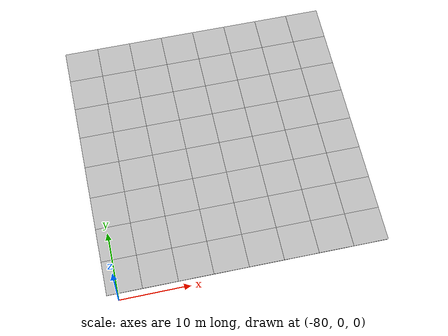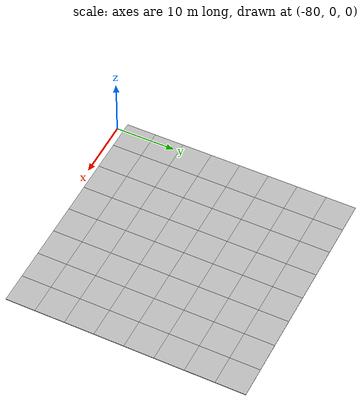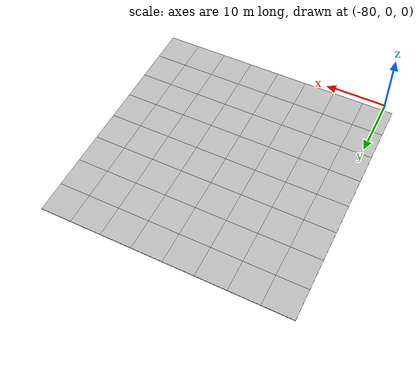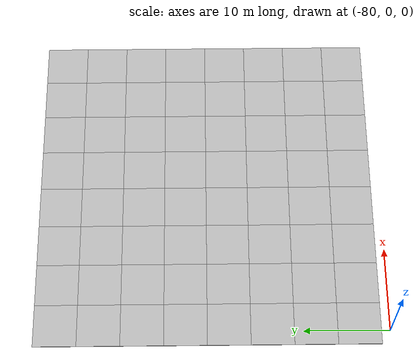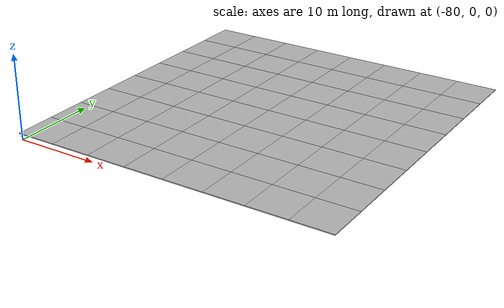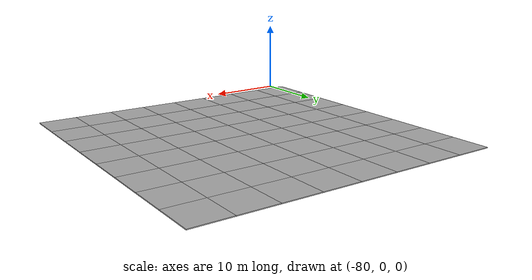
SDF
<sdf version="1.7">
 <world name="default">
  <model name="mud_plane_80x80_1">
   <model name="mud_plane_40x40_2">
    <model name="mud_plane_20x20">
     <model name="mud_plane">
      <static>1</static>
      <link name="link">
       <collision name="collision"><geometry><box><size>10 10 0.1</size></box></geometry></collision>
       <visual name="visual_1">
        <pose>-2.5 2.5 -0.05 0 -0 0</pose>
        <cast_shadows>0</cast_shadows>
        <geometry><box><size>5 5 0.1</size></box></geometry>
        <material>
         <script>
          <uri>model://mud_plane/materials/scripts</uri>
          <uri>model://mud_plane/materials/textures</uri>
          <name>vrc/mud</name>
         </script>
        </material>
       </visual>
       <visual name="visual_2">
        <pose>2.5 2.5 -0.05 0 -0 0</pose>
        <cast_shadows>0</cast_shadows>
        <geometry><box><size>5 5 0.1</size></box></geometry>
        <material>
         <script>
          <uri>model://mud_plane/materials/scripts</uri>
          <uri>model://mud_plane/materials/textures</uri>
          <name>vrc/mud</name>
         </script>
        </material>
       </visual>
       <visual name="visual_3">
        <pose>2.5 -2.5 -0.05 0 -0 0</pose>
        <cast_shadows>0</cast_shadows>
        <geometry><box><size>5 5 0.1</size></box></geometry>
        <material>
         <script>
          <uri>model://mud_plane/materials/scripts</uri>
          <uri>model://mud_plane/materials/textures</uri>
          <name>vrc/mud</name>
         </script>
        </material>
       </visual>
       <visual name="visual_4">
        <pose>-2.5 -2.5 -0.05 0 -0 0</pose>
        <cast_shadows>0</cast_shadows>
        <geometry><box><size>5 5 0.1</size></box></geometry>
        <material>
         <script>
          <uri>model://mud_plane/materials/scripts</uri>
          <uri>model://mud_plane/materials/textures</uri>
          <name>vrc/mud</name>
         </script>
        </material>
       </visual>
      </link>
      <pose>-4.99986 -4.99991 0 0 -0 0</pose>
     </model>
     <model name="mud_plane_0">
      <static>1</static>
      <link name="link">
       <collision name="collision"><geometry><box><size>10 10 0.1</size></box></geometry></collision>
       <visual name="visual_1">
        <pose>-2.5 2.5 -0.05 0 -0 0</pose>
        <cast_shadows>0</cast_shadows>
        <geometry><box><size>5 5 0.1</size></box></geometry>
        <material>
         <script>
          <uri>model://mud_plane/materials/scripts</uri>
          <uri>model://mud_plane/materials/textures</uri>
          <name>vrc/mud</name>
         </script>
        </material>
       </visual>
       <visual name="visual_2">
        <pose>2.5 2.5 -0.05 0 -0 0</pose>
        <cast_shadows>0</cast_shadows>
        <geometry><box><size>5 5 0.1</size></box></geometry>
        <material>
         <script>
          <uri>model://mud_plane/materials/scripts</uri>
          <uri>model://mud_plane/materials/textures</uri>
          <name>vrc/mud</name>
         </script>
        </material>
       </visual>
       <visual name="visual_3">
        <pose>2.5 -2.5 -0.05 0 -0 0</pose>
        <cast_shadows>0</cast_shadows>
        <geometry><box><size>5 5 0.1</size></box></geometry>
        <material>
         <script>
          <uri>model://mud_plane/materials/scripts</uri>
          <uri>model://mud_plane/materials/textures</uri>
          <name>vrc/mud</name>
         </script>
        </material>
       </visual>
       <visual name="visual_4">
        <pose>-2.5 -2.5 -0.05 0 -0 0</pose>
        <cast_shadows>0</cast_shadows>
        <geometry><box><size>5 5 0.1</size></box></geometry>
        <material>
         <script>
          <uri>model://mud_plane/materials/scripts</uri>
          <uri>model://mud_plane/materials/textures</uri>
          <name>vrc/mud</name>
         </script>
        </material>
       </visual>
      </link>
      <pose>-4.99946 4.99954 0 0 -0 0</pose>
     </model>
     <model name="mud_plane_1">
      <static>1</static>
      <link name="link">
       <collision name="collision"><geometry><box><size>10 10 0.1</size></box></geometry></collision>
       <visual name="visual_1">
        <pose>-2.5 2.5 -0.05 0 -0 0</pose>
        <cast_shadows>0</cast_shadows>
        <geometry><box><size>5 5 0.1</size></box></geometry>
        <material>
         <script>
          <uri>model://mud_plane/materials/scripts</uri>
          <uri>model://mud_plane/materials/textures</uri>
          <name>vrc/mud</name>
         </script>
        </material>
       </visual>
       <visual name="visual_2">
        <pose>2.5 2.5 -0.05 0 -0 0</pose>
        <cast_shadows>0</cast_shadows>
        <geometry><box><size>5 5 0.1</size></box></geometry>
        <material>
         <script>
          <uri>model://mud_plane/materials/scripts</uri>
          <uri>model://mud_plane/materials/textures</uri>
          <name>vrc/mud</name>
         </script>
        </material>
       </visual>
       <visual name="visual_3">
        <pose>2.5 -2.5 -0.05 0 -0 0</pose>
        <cast_shadows>0</cast_shadows>
        <geometry><box><size>5 5 0.1</size></box></geometry>
        <material>
         <script>
          <uri>model://mud_plane/materials/scripts</uri>
          <uri>model://mud_plane/materials/textures</uri>
          <name>vrc/mud</name>
         </script>
        </material>
       </visual>
       <visual name="visual_4">
        <pose>-2.5 -2.5 -0.05 0 -0 0</pose>
        <cast_shadows>0</cast_shadows>
        <geometry><box><size>5 5 0.1</size></box></geometry>
        <material>
         <script>
          <uri>model://mud_plane/materials/scripts</uri>
          <uri>model://mud_plane/materials/textures</uri>
          <name>vrc/mud</name>
         </script>
        </material>
       </visual>
      </link>
      <pose>4.99964 -4.99949 0 0 -0 0</pose>
     </model>
     <model name="mud_plane_2">
      <static>1</static>
      <link name="link">
       <collision name="collision"><geometry><box><size>10 10 0.1</size></box></geometry></collision>
       <visual name="visual_1">
        <pose>-2.5 2.5 -0.05 0 -0 0</pose>
        <cast_shadows>0</cast_shadows>
        <geometry><box><size>5 5 0.1</size></box></geometry>
        <material>
         <script>
          <uri>model://mud_plane/materials/scripts</uri>
          <uri>model://mud_plane/materials/textures</uri>
          <name>vrc/mud</name>
         </script>
        </material>
       </visual>
       <visual name="visual_2">
        <pose>2.5 2.5 -0.05 0 -0 0</pose>
        <cast_shadows>0</cast_shadows>
        <geometry><box><size>5 5 0.1</size></box></geometry>
        <material>
         <script>
          <uri>model://mud_plane/materials/scripts</uri>
          <uri>model://mud_plane/materials/textures</uri>
          <name>vrc/mud</name>
         </script>
        </material>
       </visual>
       <visual name="visual_3">
        <pose>2.5 -2.5 -0.05 0 -0 0</pose>
        <cast_shadows>0</cast_shadows>
        <geometry><box><size>5 5 0.1</size></box></geometry>
        <material>
         <script>
          <uri>model://mud_plane/materials/scripts</uri>
          <uri>model://mud_plane/materials/textures</uri>
          <name>vrc/mud</name>
         </script>
        </material>
       </visual>
       <visual name="visual_4">
        <pose>-2.5 -2.5 -0.05 0 -0 0</pose>
        <cast_shadows>0</cast_shadows>
        <geometry><box><size>5 5 0.1</size></box></geometry>
        <material>
         <script>
          <uri>model://mud_plane/materials/scripts</uri>
          <uri>model://mud_plane/materials/textures</uri>
          <name>vrc/mud</name>
         </script>
        </material>
       </visual>
      </link>
      <pose>4.99967 4.99986 0 0 -0 0</pose>
     </model>
     <static>0</static>
     <pose>-9.99895 9.99843 0 0 -0 0</pose>
    </model>
    <model name="mud_plane_20x20_0">
     <model name="mud_plane">
      <static>1</static>
      <link name="link">
       <collision name="collision"><geometry><box><size>10 10 0.1</size></box></geometry></collision>
       <visual name="visual_1">
        <pose>-2.5 2.5 -0.05 0 -0 0</pose>
        <cast_shadows>0</cast_shadows>
        <geometry><box><size>5 5 0.1</size></box></geometry>
        <material>
         <script>
          <uri>model://mud_plane/materials/scripts</uri>
          <uri>model://mud_plane/materials/textures</uri>
          <name>vrc/mud</name>
         </script>
        </material>
       </visual>
       <visual name="visual_2">
        <pose>2.5 2.5 -0.05 0 -0 0</pose>
        <cast_shadows>0</cast_shadows>
        <geometry><box><size>5 5 0.1</size></box></geometry>
        <material>
         <script>
          <uri>model://mud_plane/materials/scripts</uri>
          <uri>model://mud_plane/materials/textures</uri>
          <name>vrc/mud</name>
         </script>
        </material>
       </visual>
       <visual name="visual_3">
        <pose>2.5 -2.5 -0.05 0 -0 0</pose>
        <cast_shadows>0</cast_shadows>
        <geometry><box><size>5 5 0.1</size></box></geometry>
        <material>
         <script>
          <uri>model://mud_plane/materials/scripts</uri>
          <uri>model://mud_plane/materials/textures</uri>
          <name>vrc/mud</name>
         </script>
        </material>
       </visual>
       <visual name="visual_4">
        <pose>-2.5 -2.5 -0.05 0 -0 0</pose>
        <cast_shadows>0</cast_shadows>
        <geometry><box><size>5 5 0.1</size></box></geometry>
        <material>
         <script>
          <uri>model://mud_plane/materials/scripts</uri>
          <uri>model://mud_plane/materials/textures</uri>
          <name>vrc/mud</name>
         </script>
        </material>
       </visual>
      </link>
      <pose>-4.99986 -4.99991 0 0 -0 0</pose>
     </model>
     <model name="mud_plane_0">
      <static>1</static>
      <link name="link">
       <collision name="collision"><geometry><box><size>10 10 0.1</size></box></geometry></collision>
       <visual name="visual_1">
        <pose>-2.5 2.5 -0.05 0 -0 0</pose>
        <cast_shadows>0</cast_shadows>
        <geometry><box><size>5 5 0.1</size></box></geometry>
        <material>
         <script>
          <uri>model://mud_plane/materials/scripts</uri>
          <uri>model://mud_plane/materials/textures</uri>
          <name>vrc/mud</name>
         </script>
        </material>
       </visual>
       <visual name="visual_2">
        <pose>2.5 2.5 -0.05 0 -0 0</pose>
        <cast_shadows>0</cast_shadows>
        <geometry><box><size>5 5 0.1</size></box></geometry>
        <material>
         <script>
          <uri>model://mud_plane/materials/scripts</uri>
          <uri>model://mud_plane/materials/textures</uri>
          <name>vrc/mud</name>
         </script>
        </material>
       </visual>
       <visual name="visual_3">
        <pose>2.5 -2.5 -0.05 0 -0 0</pose>
        <cast_shadows>0</cast_shadows>
        <geometry><box><size>5 5 0.1</size></box></geometry>
        <material>
         <script>
          <uri>model://mud_plane/materials/scripts</uri>
          <uri>model://mud_plane/materials/textures</uri>
          <name>vrc/mud</name>
         </script>
        </material>
       </visual>
       <visual name="visual_4">
        <pose>-2.5 -2.5 -0.05 0 -0 0</pose>
        <cast_shadows>0</cast_shadows>
        <geometry><box><size>5 5 0.1</size></box></geometry>
        <material>
         <script>
          <uri>model://mud_plane/materials/scripts</uri>
          <uri>model://mud_plane/materials/textures</uri>
          <name>vrc/mud</name>
         </script>
        </material>
       </visual>
      </link>
      <pose>-4.99946 4.99954 0 0 -0 0</pose>
     </model>
     <model name="mud_plane_1">
      <static>1</static>
      <link name="link">
       <collision name="collision"><geometry><box><size>10 10 0.1</size></box></geometry></collision>
       <visual name="visual_1">
        <pose>-2.5 2.5 -0.05 0 -0 0</pose>
        <cast_shadows>0</cast_shadows>
        <geometry><box><size>5 5 0.1</size></box></geometry>
        <material>
         <script>
          <uri>model://mud_plane/materials/scripts</uri>
          <uri>model://mud_plane/materials/textures</uri>
          <name>vrc/mud</name>
         </script>
        </material>
       </visual>
       <visual name="visual_2">
        <pose>2.5 2.5 -0.05 0 -0 0</pose>
        <cast_shadows>0</cast_shadows>
        <geometry><box><size>5 5 0.1</size></box></geometry>
        <material>
         <script>
          <uri>model://mud_plane/materials/scripts</uri>
          <uri>model://mud_plane/materials/textures</uri>
          <name>vrc/mud</name>
         </script>
        </material>
       </visual>
       <visual name="visual_3">
        <pose>2.5 -2.5 -0.05 0 -0 0</pose>
        <cast_shadows>0</cast_shadows>
        <geometry><box><size>5 5 0.1</size></box></geometry>
        <material>
         <script>
          <uri>model://mud_plane/materials/scripts</uri>
          <uri>model://mud_plane/materials/textures</uri>
          <name>vrc/mud</name>
         </script>
        </material>
       </visual>
       <visual name="visual_4">
        <pose>-2.5 -2.5 -0.05 0 -0 0</pose>
        <cast_shadows>0</cast_shadows>
        <geometry><box><size>5 5 0.1</size></box></geometry>
        <material>
         <script>
          <uri>model://mud_plane/materials/scripts</uri>
          <uri>model://mud_plane/materials/textures</uri>
          <name>vrc/mud</name>
         </script>
        </material>
       </visual>
      </link>
      <pose>4.99964 -4.99949 0 0 -0 0</pose>
     </model>
     <model name="mud_plane_2">
      <static>1</static>
      <link name="link">
       <collision name="collision"><geometry><box><size>10 10 0.1</size></box></geometry></collision>
       <visual name="visual_1">
        <pose>-2.5 2.5 -0.05 0 -0 0</pose>
        <cast_shadows>0</cast_shadows>
        <geometry><box><size>5 5 0.1</size></box></geometry>
        <material>
         <script>
          <uri>model://mud_plane/materials/scripts</uri>
          <uri>model://mud_plane/materials/textures</uri>
          <name>vrc/mud</name>
         </script>
        </material>
       </visual>
       <visual name="visual_2">
        <pose>2.5 2.5 -0.05 0 -0 0</pose>
        <cast_shadows>0</cast_shadows>
        <geometry><box><size>5 5 0.1</size></box></geometry>
        <material>
         <script>
          <uri>model://mud_plane/materials/scripts</uri>
          <uri>model://mud_plane/materials/textures</uri>
          <name>vrc/mud</name>
         </script>
        </material>
       </visual>
       <visual name="visual_3">
        <pose>2.5 -2.5 -0.05 0 -0 0</pose>
        <cast_shadows>0</cast_shadows>
        <geometry><box><size>5 5 0.1</size></box></geometry>
        <material>
         <script>
          <uri>model://mud_plane/materials/scripts</uri>
          <uri>model://mud_plane/materials/textures</uri>
          <name>vrc/mud</name>
         </script>
        </material>
       </visual>
       <visual name="visual_4">
        <pose>-2.5 -2.5 -0.05 0 -0 0</pose>
        <cast_shadows>0</cast_shadows>
        <geometry><box><size>5 5 0.1</size></box></geometry>
        <material>
         <script>
          <uri>model://mud_plane/materials/scripts</uri>
          <uri>model://mud_plane/materials/textures</uri>
          <name>vrc/mud</name>
         </script>
        </material>
       </visual>
      </link>
      <pose>4.99967 4.99986 0 0 -0 0</pose>
     </model>
     <static>0</static>
     <pose>9.99933 9.9997 0 0 -0 0</pose>
    </model>
    <model name="mud_plane_20x20_1">
     <model name="mud_plane">
      <static>1</static>
      <link name="link">
       <collision name="collision"><geometry><box><size>10 10 0.1</size></box></geometry></collision>
       <visual name="visual_1">
        <pose>-2.5 2.5 -0.05 0 -0 0</pose>
        <cast_shadows>0</cast_shadows>
        <geometry><box><size>5 5 0.1</size></box></geometry>
        <material>
         <script>
          <uri>model://mud_plane/materials/scripts</uri>
          <uri>model://mud_plane/materials/textures</uri>
          <name>vrc/mud</name>
         </script>
        </material>
       </visual>
       <visual name="visual_2">
        <pose>2.5 2.5 -0.05 0 -0 0</pose>
        <cast_shadows>0</cast_shadows>
        <geometry><box><size>5 5 0.1</size></box></geometry>
        <material>
         <script>
          <uri>model://mud_plane/materials/scripts</uri>
          <uri>model://mud_plane/materials/textures</uri>
          <name>vrc/mud</name>
         </script>
        </material>
       </visual>
       <visual name="visual_3">
        <pose>2.5 -2.5 -0.05 0 -0 0</pose>
        <cast_shadows>0</cast_shadows>
        <geometry><box><size>5 5 0.1</size></box></geometry>
        <material>
         <script>
          <uri>model://mud_plane/materials/scripts</uri>
          <uri>model://mud_plane/materials/textures</uri>
          <name>vrc/mud</name>
         </script>
        </material>
       </visual>
       <visual name="visual_4">
        <pose>-2.5 -2.5 -0.05 0 -0 0</pose>
        <cast_shadows>0</cast_shadows>
        <geometry><box><size>5 5 0.1</size></box></geometry>
        <material>
         <script>
          <uri>model://mud_plane/materials/scripts</uri>
          <uri>model://mud_plane/materials/textures</uri>
          <name>vrc/mud</name>
         </script>
        </material>
       </visual>
      </link>
      <pose>-4.99986 -4.99991 0 0 -0 0</pose>
     </model>
     <model name="mud_plane_0">
      <static>1</static>
      <link name="link">
       <collision name="collision"><geometry><box><size>10 10 0.1</size></box></geometry></collision>
       <visual name="visual_1">
        <pose>-2.5 2.5 -0.05 0 -0 0</pose>
        <cast_shadows>0</cast_shadows>
        <geometry><box><size>5 5 0.1</size></box></geometry>
        <material>
         <script>
          <uri>model://mud_plane/materials/scripts</uri>
          <uri>model://mud_plane/materials/textures</uri>
          <name>vrc/mud</name>
         </script>
        </material>
       </visual>
       <visual name="visual_2">
        <pose>2.5 2.5 -0.05 0 -0 0</pose>
        <cast_shadows>0</cast_shadows>
        <geometry><box><size>5 5 0.1</size></box></geometry>
        <material>
         <script>
          <uri>model://mud_plane/materials/scripts</uri>
          <uri>model://mud_plane/materials/textures</uri>
          <name>vrc/mud</name>
         </script>
        </material>
       </visual>
       <visual name="visual_3">
        <pose>2.5 -2.5 -0.05 0 -0 0</pose>
        <cast_shadows>0</cast_shadows>
        <geometry><box><size>5 5 0.1</size></box></geometry>
        <material>
         <script>
          <uri>model://mud_plane/materials/scripts</uri>
          <uri>model://mud_plane/materials/textures</uri>
          <name>vrc/mud</name>
         </script>
        </material>
       </visual>
       <visual name="visual_4">
        <pose>-2.5 -2.5 -0.05 0 -0 0</pose>
        <cast_shadows>0</cast_shadows>
        <geometry><box><size>5 5 0.1</size></box></geometry>
        <material>
         <script>
          <uri>model://mud_plane/materials/scripts</uri>
          <uri>model://mud_plane/materials/textures</uri>
          <name>vrc/mud</name>
         </script>
        </material>
       </visual>
      </link>
      <pose>-4.99946 4.99954 0 0 -0 0</pose>
     </model>
     <model name="mud_plane_1">
      <static>1</static>
      <link name="link">
       <collision name="collision"><geometry><box><size>10 10 0.1</size></box></geometry></collision>
       <visual name="visual_1">
        <pose>-2.5 2.5 -0.05 0 -0 0</pose>
        <cast_shadows>0</cast_shadows>
        <geometry><box><size>5 5 0.1</size></box></geometry>
        <material>
         <script>
          <uri>model://mud_plane/materials/scripts</uri>
          <uri>model://mud_plane/materials/textures</uri>
          <name>vrc/mud</name>
         </script>
        </material>
       </visual>
       <visual name="visual_2">
        <pose>2.5 2.5 -0.05 0 -0 0</pose>
        <cast_shadows>0</cast_shadows>
        <geometry><box><size>5 5 0.1</size></box></geometry>
        <material>
         <script>
          <uri>model://mud_plane/materials/scripts</uri>
          <uri>model://mud_plane/materials/textures</uri>
          <name>vrc/mud</name>
         </script>
        </material>
       </visual>
       <visual name="visual_3">
        <pose>2.5 -2.5 -0.05 0 -0 0</pose>
        <cast_shadows>0</cast_shadows>
        <geometry><box><size>5 5 0.1</size></box></geometry>
        <material>
         <script>
          <uri>model://mud_plane/materials/scripts</uri>
          <uri>model://mud_plane/materials/textures</uri>
          <name>vrc/mud</name>
         </script>
        </material>
       </visual>
       <visual name="visual_4">
        <pose>-2.5 -2.5 -0.05 0 -0 0</pose>
        <cast_shadows>0</cast_shadows>
        <geometry><box><size>5 5 0.1</size></box></geometry>
        <material>
         <script>
          <uri>model://mud_plane/materials/scripts</uri>
          <uri>model://mud_plane/materials/textures</uri>
          <name>vrc/mud</name>
         </script>
        </material>
       </visual>
      </link>
      <pose>4.99964 -4.99949 0 0 -0 0</pose>
     </model>
     <model name="mud_plane_2">
      <static>1</static>
      <link name="link">
       <collision name="collision"><geometry><box><size>10 10 0.1</size></box></geometry></collision>
       <visual name="visual_1">
        <pose>-2.5 2.5 -0.05 0 -0 0</pose>
        <cast_shadows>0</cast_shadows>
        <geometry><box><size>5 5 0.1</size></box></geometry>
        <material>
         <script>
          <uri>model://mud_plane/materials/scripts</uri>
          <uri>model://mud_plane/materials/textures</uri>
          <name>vrc/mud</name>
         </script>
        </material>
       </visual>
       <visual name="visual_2">
        <pose>2.5 2.5 -0.05 0 -0 0</pose>
        <cast_shadows>0</cast_shadows>
        <geometry><box><size>5 5 0.1</size></box></geometry>
        <material>
         <script>
          <uri>model://mud_plane/materials/scripts</uri>
          <uri>model://mud_plane/materials/textures</uri>
          <name>vrc/mud</name>
         </script>
        </material>
       </visual>
       <visual name="visual_3">
        <pose>2.5 -2.5 -0.05 0 -0 0</pose>
        <cast_shadows>0</cast_shadows>
        <geometry><box><size>5 5 0.1</size></box></geometry>
        <material>
         <script>
          <uri>model://mud_plane/materials/scripts</uri>
          <uri>model://mud_plane/materials/textures</uri>
          <name>vrc/mud</name>
         </script>
        </material>
       </visual>
       <visual name="visual_4">
        <pose>-2.5 -2.5 -0.05 0 -0 0</pose>
        <cast_shadows>0</cast_shadows>
        <geometry><box><size>5 5 0.1</size></box></geometry>
        <material>
         <script>
          <uri>model://mud_plane/materials/scripts</uri>
          <uri>model://mud_plane/materials/textures</uri>
          <name>vrc/mud</name>
         </script>
        </material>
       </visual>
      </link>
      <pose>4.99967 4.99986 0 0 -0 0</pose>
     </model>
     <static>0</static>
     <pose>9.9993 -9.99877 0 0 -0 0</pose>
    </model>
    <model name="mud_plane_20x20_2">
     <model name="mud_plane">
      <static>1</static>
      <link name="link">
       <collision name="collision"><geometry><box><size>10 10 0.1</size></box></geometry></collision>
       <visual name="visual_1">
        <pose>-2.5 2.5 -0.05 0 -0 0</pose>
        <cast_shadows>0</cast_shadows>
        <geometry><box><size>5 5 0.1</size></box></geometry>
        <material>
         <script>
          <uri>model://mud_plane/materials/scripts</uri>
          <uri>model://mud_plane/materials/textures</uri>
          <name>vrc/mud</name>
         </script>
        </material>
       </visual>
       <visual name="visual_2">
        <pose>2.5 2.5 -0.05 0 -0 0</pose>
        <cast_shadows>0</cast_shadows>
        <geometry><box><size>5 5 0.1</size></box></geometry>
        <material>
         <script>
          <uri>model://mud_plane/materials/scripts</uri>
          <uri>model://mud_plane/materials/textures</uri>
          <name>vrc/mud</name>
         </script>
        </material>
       </visual>
       <visual name="visual_3">
        <pose>2.5 -2.5 -0.05 0 -0 0</pose>
        <cast_shadows>0</cast_shadows>
        <geometry><box><size>5 5 0.1</size></box></geometry>
        <material>
         <script>
          <uri>model://mud_plane/materials/scripts</uri>
          <uri>model://mud_plane/materials/textures</uri>
          <name>vrc/mud</name>
         </script>
        </material>
       </visual>
       <visual name="visual_4">
        <pose>-2.5 -2.5 -0.05 0 -0 0</pose>
        <cast_shadows>0</cast_shadows>
        <geometry><box><size>5 5 0.1</size></box></geometry>
        <material>
         <script>
          <uri>model://mud_plane/materials/scripts</uri>
          <uri>model://mud_plane/materials/textures</uri>
          <name>vrc/mud</name>
         </script>
        </material>
       </visual>
      </link>
      <pose>-4.99986 -4.99991 0 0 -0 0</pose>
     </model>
     <model name="mud_plane_0">
      <static>1</static>
      <link name="link">
       <collision name="collision"><geometry><box><size>10 10 0.1</size></box></geometry></collision>
       <visual name="visual_1">
        <pose>-2.5 2.5 -0.05 0 -0 0</pose>
        <cast_shadows>0</cast_shadows>
        <geometry><box><size>5 5 0.1</size></box></geometry>
        <material>
         <script>
          <uri>model://mud_plane/materials/scripts</uri>
          <uri>model://mud_plane/materials/textures</uri>
          <name>vrc/mud</name>
         </script>
        </material>
       </visual>
       <visual name="visual_2">
        <pose>2.5 2.5 -0.05 0 -0 0</pose>
        <cast_shadows>0</cast_shadows>
        <geometry><box><size>5 5 0.1</size></box></geometry>
        <material>
         <script>
          <uri>model://mud_plane/materials/scripts</uri>
          <uri>model://mud_plane/materials/textures</uri>
          <name>vrc/mud</name>
         </script>
        </material>
       </visual>
       <visual name="visual_3">
        <pose>2.5 -2.5 -0.05 0 -0 0</pose>
        <cast_shadows>0</cast_shadows>
        <geometry><box><size>5 5 0.1</size></box></geometry>
        <material>
         <script>
          <uri>model://mud_plane/materials/scripts</uri>
          <uri>model://mud_plane/materials/textures</uri>
          <name>vrc/mud</name>
         </script>
        </material>
       </visual>
       <visual name="visual_4">
        <pose>-2.5 -2.5 -0.05 0 -0 0</pose>
        <cast_shadows>0</cast_shadows>
        <geometry><box><size>5 5 0.1</size></box></geometry>
        <material>
         <script>
          <uri>model://mud_plane/materials/scripts</uri>
          <uri>model://mud_plane/materials/textures</uri>
          <name>vrc/mud</name>
         </script>
        </material>
       </visual>
      </link>
      <pose>-4.99946 4.99954 0 0 -0 0</pose>
     </model>
     <model name="mud_plane_1">
      <static>1</static>
      <link name="link">
       <collision name="collision"><geometry><box><size>10 10 0.1</size></box></geometry></collision>
       <visual name="visual_1">
        <pose>-2.5 2.5 -0.05 0 -0 0</pose>
        <cast_shadows>0</cast_shadows>
        <geometry><box><size>5 5 0.1</size></box></geometry>
        <material>
         <script>
          <uri>model://mud_plane/materials/scripts</uri>
          <uri>model://mud_plane/materials/textures</uri>
          <name>vrc/mud</name>
         </script>
        </material>
       </visual>
       <visual name="visual_2">
        <pose>2.5 2.5 -0.05 0 -0 0</pose>
        <cast_shadows>0</cast_shadows>
        <geometry><box><size>5 5 0.1</size></box></geometry>
        <material>
         <script>
          <uri>model://mud_plane/materials/scripts</uri>
          <uri>model://mud_plane/materials/textures</uri>
          <name>vrc/mud</name>
         </script>
        </material>
       </visual>
       <visual name="visual_3">
        <pose>2.5 -2.5 -0.05 0 -0 0</pose>
        <cast_shadows>0</cast_shadows>
        <geometry><box><size>5 5 0.1</size></box></geometry>
        <material>
         <script>
          <uri>model://mud_plane/materials/scripts</uri>
          <uri>model://mud_plane/materials/textures</uri>
          <name>vrc/mud</name>
         </script>
        </material>
       </visual>
       <visual name="visual_4">
        <pose>-2.5 -2.5 -0.05 0 -0 0</pose>
        <cast_shadows>0</cast_shadows>
        <geometry><box><size>5 5 0.1</size></box></geometry>
        <material>
         <script>
          <uri>model://mud_plane/materials/scripts</uri>
          <uri>model://mud_plane/materials/textures</uri>
          <name>vrc/mud</name>
         </script>
        </material>
       </visual>
      </link>
      <pose>4.99964 -4.99949 0 0 -0 0</pose>
     </model>
     <model name="mud_plane_2">
      <static>1</static>
      <link name="link">
       <collision name="collision"><geometry><box><size>10 10 0.1</size></box></geometry></collision>
       <visual name="visual_1">
        <pose>-2.5 2.5 -0.05 0 -0 0</pose>
        <cast_shadows>0</cast_shadows>
        <geometry><box><size>5 5 0.1</size></box></geometry>
        <material>
         <script>
          <uri>model://mud_plane/materials/scripts</uri>
          <uri>model://mud_plane/materials/textures</uri>
          <name>vrc/mud</name>
         </script>
        </material>
       </visual>
       <visual name="visual_2">
        <pose>2.5 2.5 -0.05 0 -0 0</pose>
        <cast_shadows>0</cast_shadows>
        <geometry><box><size>5 5 0.1</size></box></geometry>
        <material>
         <script>
          <uri>model://mud_plane/materials/scripts</uri>
          <uri>model://mud_plane/materials/textures</uri>
          <name>vrc/mud</name>
         </script>
        </material>
       </visual>
       <visual name="visual_3">
        <pose>2.5 -2.5 -0.05 0 -0 0</pose>
        <cast_shadows>0</cast_shadows>
        <geometry><box><size>5 5 0.1</size></box></geometry>
        <material>
         <script>
          <uri>model://mud_plane/materials/scripts</uri>
          <uri>model://mud_plane/materials/textures</uri>
          <name>vrc/mud</name>
         </script>
        </material>
       </visual>
       <visual name="visual_4">
        <pose>-2.5 -2.5 -0.05 0 -0 0</pose>
        <cast_shadows>0</cast_shadows>
        <geometry><box><size>5 5 0.1</size></box></geometry>
        <material>
         <script>
          <uri>model://mud_plane/materials/scripts</uri>
          <uri>model://mud_plane/materials/textures</uri>
          <name>vrc/mud</name>
         </script>
        </material>
       </visual>
      </link>
      <pose>4.99967 4.99986 0 0 -0 0</pose>
     </model>
     <static>0</static>
     <pose>-9.99969 -9.99935 0 0 -0 0</pose>
    </model>
    <static>0</static>
    <pose>-19.9989 -19.9993 0 0 -0 0</pose>
   </model>
   <static>0</static>
   <pose>-41.5873 41.0041 0 0 -0 0</pose>
  </model>
 </world>
</sdf>
